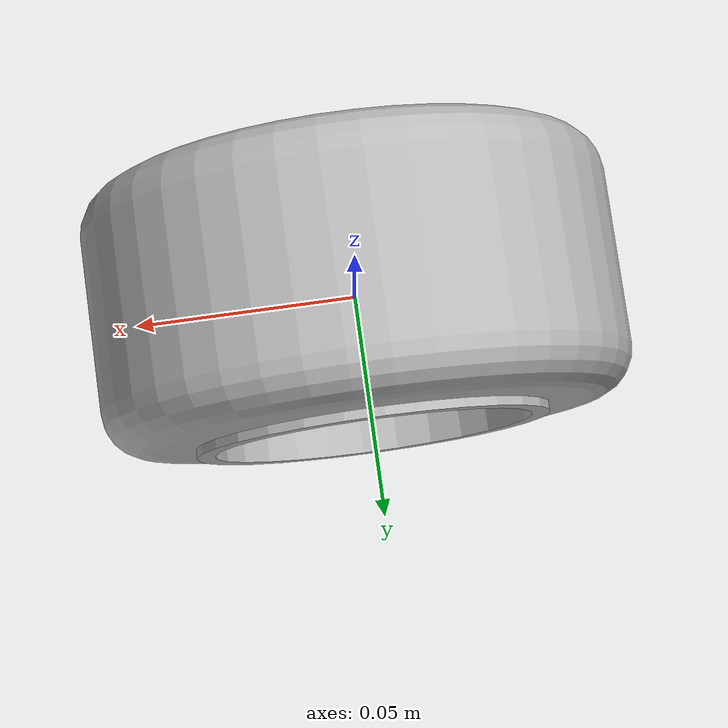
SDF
<?xml version="1.0" ?>
<sdf version="1.5">
  <model name="f1cart_wheel">

    <link name="rim">
      <inertial>
        <mass>0.22</mass>
        <pose> 0.0 0.0 0.0 0.0 0.0 0.0</pose>
        <inertia>
          <ixx>0.0001706</ixx>
          <ixy>0</ixy>
          <ixz>0</ixz>
          <iyy>0.0002487</iyy>
          <iyz>0</iyz>
          <izz>0.0001706</izz>
        </inertia>
      </inertial>
      <collision name="rim_collision">
        <pose> 0.0 0.0 0.0 1.57 0.0 0.0</pose>
        <geometry>
          <cylinder>
            <radius>0.04</radius>
            <length>0.065</length>
          </cylinder>
        </geometry>
        <surface>
          <friction>
            <ode>
              <mu>1.0</mu>
              <mu2>1.0</mu2>
              <fdir1>0 0 1</fdir1>
              <slip1>0.0</slip1>
              <slip2>0.0</slip2>
            </ode>
          </friction>
          <contact>
            <ode>
              <min_depth>0.005</min_depth>
              <kp>1e8</kp>
            </ode>
          </contact>
        </surface>
      </collision>
      <visual name="rim_visual">
        <cast_shadows>true</cast_shadows>
        <geometry>
          <mesh>
             <scale>1 1 1</scale>
             <uri>model://f1cart/Meshes/f1cart_rrim.dae</uri>
          </mesh>
        </geometry>
      </visual>
    </link>

    <link name="tyre">
      <inertial>
        <mass>0.45</mass>
        <pose> 0.0 0.0 0.0 0.0 0.0 0.0</pose>
        <inertia>
          <ixx>0.00070</ixx>
          <ixy>0</ixy>
          <ixz>0</ixz>
          <iyy>0.0011568</iyy>
          <iyz>0</iyz>
          <izz>0.00070</izz>
        </inertia>
      </inertial>
      <collision name="tyre_collision">
        <pose> 0.0 0.0 0.0 1.57 0.0 0.0</pose>
        <geometry>
          <cylinder>
            <radius>0.06</radius>
            <length>0.065</length>
          </cylinder>
        </geometry>
        <surface>
          <friction>
            <ode>
              <mu>50.0</mu>
              <mu2>50.0</mu2>
              <fdir1>0 0 1</fdir1>
              <slip1>0.0</slip1>
              <slip2>0.0</slip2>
            </ode>
          </friction>
          <contact>
            <ode>
              <min_depth>0.005</min_depth>
              <kp>1e8</kp>
            </ode>
          </contact>
        </surface>
      </collision>
      <visual name="tyre_visual">
        <cast_shadows>true</cast_shadows>
        <geometry>
          <mesh>
             <scale>1 1 1</scale>
             <uri>model://f1cart/Meshes/f1cart_rtyre.dae</uri>
          </mesh>
        </geometry>
      </visual>

     <velocity_decay>
        <angular>0.005</angular>
      </velocity_decay>

    </link>

    <joint name="tyre_joint" type="fixed">
        <pose>0 0 0 0 0 0</pose>
        <child>tyre</child>
        <parent>rim</parent>
        <axis>
            <xyz>1 1 1</xyz>
        </axis>
    </joint>

  </model>
</sdf>
